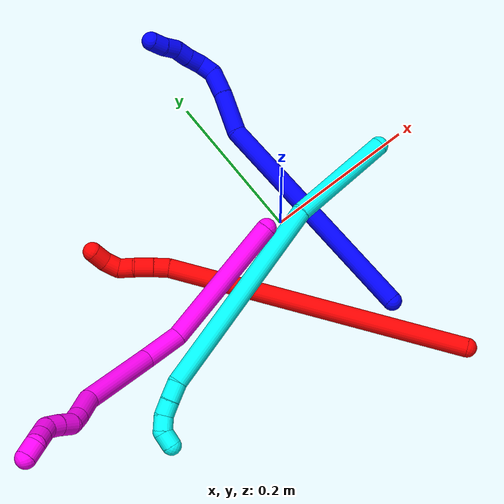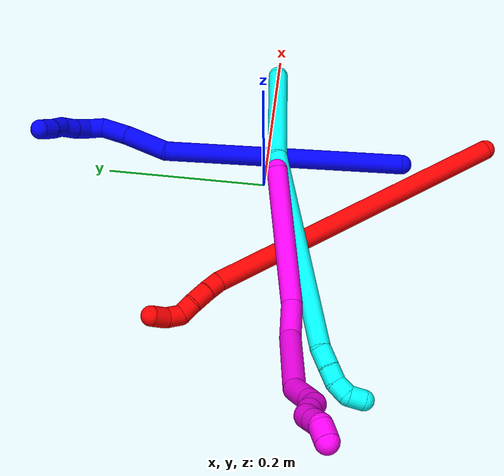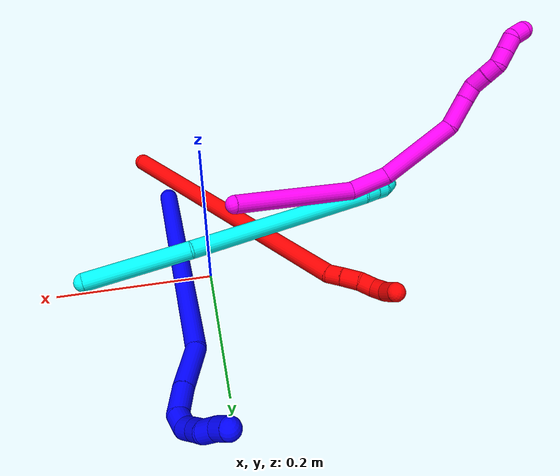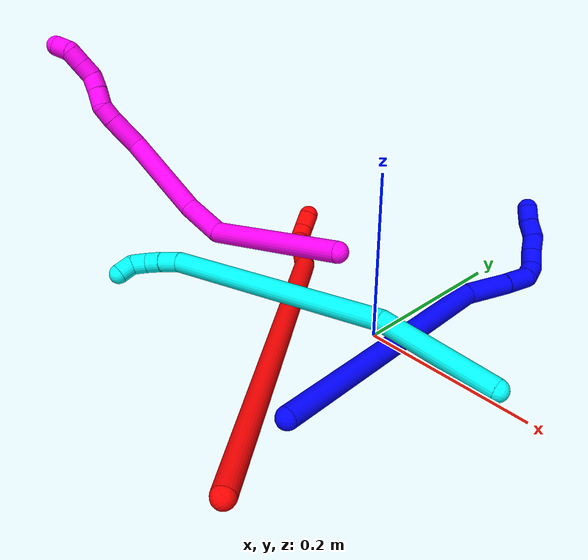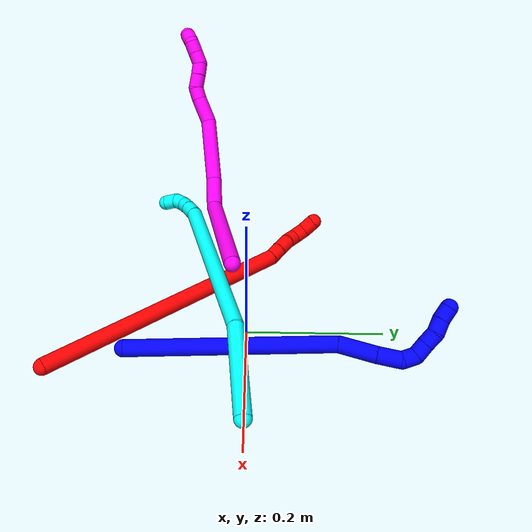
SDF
<sdf version="1.7">
 <world name="default">
  <model name="1">
   <static>0</static>
   <link name="1">
    <collision name="collision-cylinder-e_1_1_4">
     <pose>0.000756 0.152473 0.007462 -1.5219 0.004953 -0.004716</pose>
     <geometry><cylinder><radius>0.0125</radius><length>0.305315</length></cylinder></geometry>
     <surface>
      <friction><ode><mu>1.16</mu><mu2>1.16</mu2><slip1>0</slip1><slip2>0</slip2></ode></friction>
      <contact><ode><kp>1e+06</kp><kd>1</kd><max_vel>0</max_vel><min_depth>0.001</min_depth></ode></contact>
     </surface>
    </collision>
    <visual name="visual-cylinder-e_1_1_4">
     <pose>0.000756 0.152473 0.007462 -1.5219 0.004953 -0.004716</pose>
     <geometry><cylinder><radius>0.0125</radius><length>0.305315</length></cylinder></geometry>
     <material><ambient>0 0 1 1</ambient></material>
    </visual>
    <collision name="collision-cylinder-e_2_4_5">
     <pose>0.012253 0.331208 0.016992 -1.49217 0.387147 -0.358492</pose>
     <geometry><cylinder><radius>0.0125</radius><length>0.056898</length></cylinder></geometry>
     <surface>
      <friction><ode><mu>1.16</mu><mu2>1.16</mu2><slip1>0</slip1><slip2>0</slip2></ode></friction>
      <contact><ode><kp>1e+06</kp><kd>1</kd><max_vel>0</max_vel><min_depth>0.001</min_depth></ode></contact>
     </surface>
    </collision>
    <visual name="visual-cylinder-e_2_4_5">
     <pose>0.012253 0.331208 0.016992 -1.49217 0.387147 -0.358492</pose>
     <geometry><cylinder><radius>0.0125</radius><length>0.056898</length></cylinder></geometry>
     <material><ambient>0 0 1 1</ambient></material>
    </visual>
    <collision name="collision-cylinder-e_3_5_6">
     <pose>0.028045 0.373838 0.020113 -1.50663 0.298769 -0.280437</pose>
     <geometry><cylinder><radius>0.0125</radius><length>0.034323</length></cylinder></geometry>
     <surface>
      <friction><ode><mu>1.16</mu><mu2>1.16</mu2><slip1>0</slip1><slip2>0</slip2></ode></friction>
      <contact><ode><kp>1e+06</kp><kd>1</kd><max_vel>0</max_vel><min_depth>0.001</min_depth></ode></contact>
     </surface>
    </collision>
    <visual name="visual-cylinder-e_3_5_6">
     <pose>0.028045 0.373838 0.020113 -1.50663 0.298769 -0.280437</pose>
     <geometry><cylinder><radius>0.0125</radius><length>0.034323</length></cylinder></geometry>
     <material><ambient>0 0 1 1</ambient></material>
    </visual>
    <collision name="collision-cylinder-e_4_6_7">
     <pose>0.030387 0.400199 0.022974 -1.3917 -0.260783 0.218184</pose>
     <geometry><cylinder><radius>0.0125</radius><length>0.021022</length></cylinder></geometry>
     <surface>
      <friction><ode><mu>1.16</mu><mu2>1.16</mu2><slip1>0</slip1><slip2>0</slip2></ode></friction>
      <contact><ode><kp>1e+06</kp><kd>1</kd><max_vel>0</max_vel><min_depth>0.001</min_depth></ode></contact>
     </surface>
    </collision>
    <visual name="visual-cylinder-e_4_6_7">
     <pose>0.030387 0.400199 0.022974 -1.3917 -0.260783 0.218184</pose>
     <geometry><cylinder><radius>0.0125</radius><length>0.021022</length></cylinder></geometry>
     <material><ambient>0 0 1 1</ambient></material>
    </visual>
    <collision name="collision-cylinder-e_5_7_8">
     <pose>0.022226 0.416851 0.031117 -0.810451 -0.535341 0.234213</pose>
     <geometry><cylinder><radius>0.0125</radius><length>0.021369</length></cylinder></geometry>
     <surface>
      <friction><ode><mu>1.16</mu><mu2>1.16</mu2><slip1>0</slip1><slip2>0</slip2></ode></friction>
      <contact><ode><kp>1e+06</kp><kd>1</kd><max_vel>0</max_vel><min_depth>0.001</min_depth></ode></contact>
     </surface>
    </collision>
    <visual name="visual-cylinder-e_5_7_8">
     <pose>0.022226 0.416851 0.031117 -0.810451 -0.535341 0.234213</pose>
     <geometry><cylinder><radius>0.0125</radius><length>0.021369</length></cylinder></geometry>
     <material><ambient>0 0 1 1</ambient></material>
    </visual>
    <collision name="collision-cylinder-e_6_8_9">
     <pose>0.01266 0.429975 0.044131 -0.769032 -0.416754 0.170711</pose>
     <geometry><cylinder><radius>0.0125</radius><length>0.020335</length></cylinder></geometry>
     <surface>
      <friction><ode><mu>1.16</mu><mu2>1.16</mu2><slip1>0</slip1><slip2>0</slip2></ode></friction>
      <contact><ode><kp>1e+06</kp><kd>1</kd><max_vel>0</max_vel><min_depth>0.001</min_depth></ode></contact>
     </surface>
    </collision>
    <visual name="visual-cylinder-e_6_8_9">
     <pose>0.01266 0.429975 0.044131 -0.769032 -0.416754 0.170711</pose>
     <geometry><cylinder><radius>0.0125</radius><length>0.020335</length></cylinder></geometry>
     <material><ambient>0 0 1 1</ambient></material>
    </visual>
    <collision name="collision-cylinder-e_7_9_10">
     <pose>0.001447 0.440461 0.057068 -0.571053 -0.762047 0.234115</pose>
     <geometry><cylinder><radius>0.0125</radius><length>0.020558</length></cylinder></geometry>
     <surface>
      <friction><ode><mu>1.16</mu><mu2>1.16</mu2><slip1>0</slip1><slip2>0</slip2></ode></friction>
      <contact><ode><kp>1e+06</kp><kd>1</kd><max_vel>0</max_vel><min_depth>0.001</min_depth></ode></contact>
     </surface>
    </collision>
    <visual name="visual-cylinder-e_7_9_10">
     <pose>0.001447 0.440461 0.057068 -0.571053 -0.762047 0.234115</pose>
     <geometry><cylinder><radius>0.0125</radius><length>0.020558</length></cylinder></geometry>
     <material><ambient>0 0 1 1</ambient></material>
    </visual>
    <collision name="collision-cylinder-e_8_10_2">
     <pose>-0.011336 0.450059 0.069516 -0.733362 -0.598726 0.235964</pose>
     <geometry><cylinder><radius>0.0125</radius><length>0.020179</length></cylinder></geometry>
     <surface>
      <friction><ode><mu>1.16</mu><mu2>1.16</mu2><slip1>0</slip1><slip2>0</slip2></ode></friction>
      <contact><ode><kp>1e+06</kp><kd>1</kd><max_vel>0</max_vel><min_depth>0.001</min_depth></ode></contact>
     </surface>
    </collision>
    <visual name="visual-cylinder-e_8_10_2">
     <pose>-0.011336 0.450059 0.069516 -0.733362 -0.598726 0.235964</pose>
     <geometry><cylinder><radius>0.0125</radius><length>0.020179</length></cylinder></geometry>
     <material><ambient>0 0 1 1</ambient></material>
    </visual>
    <collision name="collision-sphere-2">
     <pose>-0.017022 0.455638 0.075708 0 -0 0</pose>
     <geometry><sphere><radius>0.0125</radius></sphere></geometry>
     <surface>
      <friction><ode><mu>1.16</mu><mu2>1.16</mu2><slip1>0</slip1><slip2>0</slip2></ode></friction>
      <contact><ode><kp>1e+06</kp><kd>1</kd><max_vel>0</max_vel><min_depth>0.001</min_depth></ode></contact>
     </surface>
    </collision>
    <visual name="visual-sphere-2">
     <pose>-0.017022 0.455638 0.075708 0 -0 0</pose>
     <geometry><sphere><radius>0.0125</radius></sphere></geometry>
     <material><ambient>0 0 1 1</ambient></material>
    </visual>
    <collision name="collision-sphere-10">
     <pose>-0.005649 0.44448 0.063324 0 -0 0</pose>
     <geometry><sphere><radius>0.0125</radius></sphere></geometry>
     <surface>
      <friction><ode><mu>1.16</mu><mu2>1.16</mu2><slip1>0</slip1><slip2>0</slip2></ode></friction>
      <contact><ode><kp>1e+06</kp><kd>1</kd><max_vel>0</max_vel><min_depth>0.001</min_depth></ode></contact>
     </surface>
    </collision>
    <visual name="visual-sphere-10">
     <pose>-0.005649 0.44448 0.063324 0 -0 0</pose>
     <geometry><sphere><radius>0.0125</radius></sphere></geometry>
     <material><ambient>0 0 1 1</ambient></material>
    </visual>
    <collision name="collision-sphere-9">
     <pose>0.008544 0.436441 0.050812 0 -0 0</pose>
     <geometry><sphere><radius>0.0125</radius></sphere></geometry>
     <surface>
      <friction><ode><mu>1.16</mu><mu2>1.16</mu2><slip1>0</slip1><slip2>0</slip2></ode></friction>
      <contact><ode><kp>1e+06</kp><kd>1</kd><max_vel>0</max_vel><min_depth>0.001</min_depth></ode></contact>
     </surface>
    </collision>
    <visual name="visual-sphere-9">
     <pose>0.008544 0.436441 0.050812 0 -0 0</pose>
     <geometry><sphere><radius>0.0125</radius></sphere></geometry>
     <material><ambient>0 0 1 1</ambient></material>
    </visual>
    <collision name="collision-sphere-4">
     <pose>0.001512 0.304946 0.014923 0 -0 0</pose>
     <geometry><sphere><radius>0.0125</radius></sphere></geometry>
     <surface>
      <friction><ode><mu>1.16</mu><mu2>1.16</mu2><slip1>0</slip1><slip2>0</slip2></ode></friction>
      <contact><ode><kp>1e+06</kp><kd>1</kd><max_vel>0</max_vel><min_depth>0.001</min_depth></ode></contact>
     </surface>
    </collision>
    <visual name="visual-sphere-4">
     <pose>0.001512 0.304946 0.014923 0 -0 0</pose>
     <geometry><sphere><radius>0.0125</radius></sphere></geometry>
     <material><ambient>0 0 1 1</ambient></material>
    </visual>
    <collision name="collision-sphere-1">
     <geometry><sphere><radius>0.0125</radius></sphere></geometry>
     <surface>
      <friction><ode><mu>1.16</mu><mu2>1.16</mu2><slip1>0</slip1><slip2>0</slip2></ode></friction>
      <contact><ode><kp>1e+06</kp><kd>1</kd><max_vel>0</max_vel><min_depth>0.001</min_depth></ode></contact>
     </surface>
    </collision>
    <visual name="visual-sphere-1">
     <geometry><sphere><radius>0.0125</radius></sphere></geometry>
     <material><ambient>0 0 1 1</ambient></material>
    </visual>
    <collision name="collision-sphere-8">
     <pose>0.016776 0.42351 0.03745 0 -0 0</pose>
     <geometry><sphere><radius>0.0125</radius></sphere></geometry>
     <surface>
      <friction><ode><mu>1.16</mu><mu2>1.16</mu2><slip1>0</slip1><slip2>0</slip2></ode></friction>
      <contact><ode><kp>1e+06</kp><kd>1</kd><max_vel>0</max_vel><min_depth>0.001</min_depth></ode></contact>
     </surface>
    </collision>
    <visual name="visual-sphere-8">
     <pose>0.016776 0.42351 0.03745 0 -0 0</pose>
     <geometry><sphere><radius>0.0125</radius></sphere></geometry>
     <material><ambient>0 0 1 1</ambient></material>
    </visual>
    <collision name="collision-sphere-5">
     <pose>0.022994 0.35747 0.019062 0 -0 0</pose>
     <geometry><sphere><radius>0.0125</radius></sphere></geometry>
     <surface>
      <friction><ode><mu>1.16</mu><mu2>1.16</mu2><slip1>0</slip1><slip2>0</slip2></ode></friction>
      <contact><ode><kp>1e+06</kp><kd>1</kd><max_vel>0</max_vel><min_depth>0.001</min_depth></ode></contact>
     </surface>
    </collision>
    <visual name="visual-sphere-5">
     <pose>0.022994 0.35747 0.019062 0 -0 0</pose>
     <geometry><sphere><radius>0.0125</radius></sphere></geometry>
     <material><ambient>0 0 1 1</ambient></material>
    </visual>
    <collision name="collision-sphere-6">
     <pose>0.033097 0.390206 0.021165 0 -0 0</pose>
     <geometry><sphere><radius>0.0125</radius></sphere></geometry>
     <surface>
      <friction><ode><mu>1.16</mu><mu2>1.16</mu2><slip1>0</slip1><slip2>0</slip2></ode></friction>
      <contact><ode><kp>1e+06</kp><kd>1</kd><max_vel>0</max_vel><min_depth>0.001</min_depth></ode></contact>
     </surface>
    </collision>
    <visual name="visual-sphere-6">
     <pose>0.033097 0.390206 0.021165 0 -0 0</pose>
     <geometry><sphere><radius>0.0125</radius></sphere></geometry>
     <material><ambient>0 0 1 1</ambient></material>
    </visual>
    <collision name="collision-sphere-7">
     <pose>0.027676 0.410192 0.024783 0 -0 0</pose>
     <geometry><sphere><radius>0.0125</radius></sphere></geometry>
     <surface>
      <friction><ode><mu>1.16</mu><mu2>1.16</mu2><slip1>0</slip1><slip2>0</slip2></ode></friction>
      <contact><ode><kp>1e+06</kp><kd>1</kd><max_vel>0</max_vel><min_depth>0.001</min_depth></ode></contact>
     </surface>
    </collision>
    <visual name="visual-sphere-7">
     <pose>0.027676 0.410192 0.024783 0 -0 0</pose>
     <geometry><sphere><radius>0.0125</radius></sphere></geometry>
     <material><ambient>0 0 1 1</ambient></material>
    </visual>
    <inertial>
     <pose>0.006126 0.24486 0.017113 0 -0 0</pose>
     <mass>0.5</mass>
     <inertia>
      <ixx>0.002392</ixx>
      <ixy>0</ixy>
      <ixz>0</ixz>
      <iyy>0.000145</iyy>
      <iyz>0</iyz>
      <izz>-0.002417</izz>
     </inertia>
    </inertial>
   </link>
   <pose>0.044102 -0.173826 0.011499 -0.047755 0.075582 0.04905</pose>
  </model>
  <model name="2">
   <static>0</static>
   <link name="2">
    <collision name="collision-cylinder-e_1_1_4">
     <pose>-0.114793 0.151228 -0.051001 -1.89606 -0.623542 0.843717</pose>
     <geometry><cylinder><radius>0.0125</radius><length>0.393184</length></cylinder></geometry>
     <surface>
      <friction><ode><mu>1.16</mu><mu2>1.16</mu2><slip1>0</slip1><slip2>0</slip2></ode></friction>
      <contact><ode><kp>1e+06</kp><kd>1</kd><max_vel>0</max_vel><min_depth>0.001</min_depth></ode></contact>
     </surface>
    </collision>
    <visual name="visual-cylinder-e_1_1_4">
     <pose>-0.114793 0.151228 -0.051001 -1.89606 -0.623542 0.843717</pose>
     <geometry><cylinder><radius>0.0125</radius><length>0.393184</length></cylinder></geometry>
     <material><ambient>1 0 0 1</ambient></material>
    </visual>
    <collision name="collision-cylinder-e_2_4_5">
     <pose>-0.237313 0.307981 -0.105901 -2.18526 -0.851849 1.43809</pose>
     <geometry><cylinder><radius>0.0125</radius><length>0.020537</length></cylinder></geometry>
     <surface>
      <friction><ode><mu>1.16</mu><mu2>1.16</mu2><slip1>0</slip1><slip2>0</slip2></ode></friction>
      <contact><ode><kp>1e+06</kp><kd>1</kd><max_vel>0</max_vel><min_depth>0.001</min_depth></ode></contact>
     </surface>
    </collision>
    <visual name="visual-cylinder-e_2_4_5">
     <pose>-0.237313 0.307981 -0.105901 -2.18526 -0.851849 1.43809</pose>
     <geometry><cylinder><radius>0.0125</radius><length>0.020537</length></cylinder></geometry>
     <material><ambient>1 0 0 1</ambient></material>
    </visual>
    <collision name="collision-cylinder-e_3_5_6">
     <pose>-0.253519 0.320119 -0.115137 -2.24992 -0.784323 1.4267</pose>
     <geometry><cylinder><radius>0.0125</radius><length>0.024009</length></cylinder></geometry>
     <surface>
      <friction><ode><mu>1.16</mu><mu2>1.16</mu2><slip1>0</slip1><slip2>0</slip2></ode></friction>
      <contact><ode><kp>1e+06</kp><kd>1</kd><max_vel>0</max_vel><min_depth>0.001</min_depth></ode></contact>
     </surface>
    </collision>
    <visual name="visual-cylinder-e_3_5_6">
     <pose>-0.253519 0.320119 -0.115137 -2.24992 -0.784323 1.4267</pose>
     <geometry><cylinder><radius>0.0125</radius><length>0.024009</length></cylinder></geometry>
     <material><ambient>1 0 0 1</ambient></material>
    </visual>
    <collision name="collision-cylinder-e_4_6_7">
     <pose>-0.267342 0.333269 -0.125981 -2.2708 -0.558699 1.10515</pose>
     <geometry><cylinder><radius>0.0125</radius><length>0.020163</length></cylinder></geometry>
     <surface>
      <friction><ode><mu>1.16</mu><mu2>1.16</mu2><slip1>0</slip1><slip2>0</slip2></ode></friction>
      <contact><ode><kp>1e+06</kp><kd>1</kd><max_vel>0</max_vel><min_depth>0.001</min_depth></ode></contact>
     </surface>
    </collision>
    <visual name="visual-cylinder-e_4_6_7">
     <pose>-0.267342 0.333269 -0.125981 -2.2708 -0.558699 1.10515</pose>
     <geometry><cylinder><radius>0.0125</radius><length>0.020163</length></cylinder></geometry>
     <material><ambient>1 0 0 1</ambient></material>
    </visual>
    <collision name="collision-cylinder-e_5_7_8">
     <pose>-0.280525 0.346243 -0.131106 -1.51145 -0.882552 0.837561</pose>
     <geometry><cylinder><radius>0.0125</radius><length>0.020298</length></cylinder></geometry>
     <surface>
      <friction><ode><mu>1.16</mu><mu2>1.16</mu2><slip1>0</slip1><slip2>0</slip2></ode></friction>
      <contact><ode><kp>1e+06</kp><kd>1</kd><max_vel>0</max_vel><min_depth>0.001</min_depth></ode></contact>
     </surface>
    </collision>
    <visual name="visual-cylinder-e_5_7_8">
     <pose>-0.280525 0.346243 -0.131106 -1.51145 -0.882552 0.837561</pose>
     <geometry><cylinder><radius>0.0125</radius><length>0.020298</length></cylinder></geometry>
     <material><ambient>1 0 0 1</ambient></material>
    </visual>
    <collision name="collision-cylinder-e_6_8_2">
     <pose>-0.297496 0.357629 -0.127406 -0.980392 -0.992638 0.562639</pose>
     <geometry><cylinder><radius>0.0125</radius><length>0.02181</length></cylinder></geometry>
     <surface>
      <friction><ode><mu>1.16</mu><mu2>1.16</mu2><slip1>0</slip1><slip2>0</slip2></ode></friction>
      <contact><ode><kp>1e+06</kp><kd>1</kd><max_vel>0</max_vel><min_depth>0.001</min_depth></ode></contact>
     </surface>
    </collision>
    <visual name="visual-cylinder-e_6_8_2">
     <pose>-0.297496 0.357629 -0.127406 -0.980392 -0.992638 0.562639</pose>
     <geometry><cylinder><radius>0.0125</radius><length>0.02181</length></cylinder></geometry>
     <material><ambient>1 0 0 1</ambient></material>
    </visual>
    <collision name="collision-sphere-2">
     <pose>-0.306629 0.362579 -0.124088 0 -0 0</pose>
     <geometry><sphere><radius>0.0125</radius></sphere></geometry>
     <surface>
      <friction><ode><mu>1.16</mu><mu2>1.16</mu2><slip1>0</slip1><slip2>0</slip2></ode></friction>
      <contact><ode><kp>1e+06</kp><kd>1</kd><max_vel>0</max_vel><min_depth>0.001</min_depth></ode></contact>
     </surface>
    </collision>
    <visual name="visual-sphere-2">
     <pose>-0.306629 0.362579 -0.124088 0 -0 0</pose>
     <geometry><sphere><radius>0.0125</radius></sphere></geometry>
     <material><ambient>1 0 0 1</ambient></material>
    </visual>
    <collision name="collision-sphere-4">
     <pose>-0.229586 0.302456 -0.102002 0 -0 0</pose>
     <geometry><sphere><radius>0.0125</radius></sphere></geometry>
     <surface>
      <friction><ode><mu>1.16</mu><mu2>1.16</mu2><slip1>0</slip1><slip2>0</slip2></ode></friction>
      <contact><ode><kp>1e+06</kp><kd>1</kd><max_vel>0</max_vel><min_depth>0.001</min_depth></ode></contact>
     </surface>
    </collision>
    <visual name="visual-sphere-4">
     <pose>-0.229586 0.302456 -0.102002 0 -0 0</pose>
     <geometry><sphere><radius>0.0125</radius></sphere></geometry>
     <material><ambient>1 0 0 1</ambient></material>
    </visual>
    <collision name="collision-sphere-1">
     <geometry><sphere><radius>0.0125</radius></sphere></geometry>
     <surface>
      <friction><ode><mu>1.16</mu><mu2>1.16</mu2><slip1>0</slip1><slip2>0</slip2></ode></friction>
      <contact><ode><kp>1e+06</kp><kd>1</kd><max_vel>0</max_vel><min_depth>0.001</min_depth></ode></contact>
     </surface>
    </collision>
    <visual name="visual-sphere-1">
     <geometry><sphere><radius>0.0125</radius></sphere></geometry>
     <material><ambient>1 0 0 1</ambient></material>
    </visual>
    <collision name="collision-sphere-8">
     <pose>-0.288363 0.352678 -0.130724 0 -0 0</pose>
     <geometry><sphere><radius>0.0125</radius></sphere></geometry>
     <surface>
      <friction><ode><mu>1.16</mu><mu2>1.16</mu2><slip1>0</slip1><slip2>0</slip2></ode></friction>
      <contact><ode><kp>1e+06</kp><kd>1</kd><max_vel>0</max_vel><min_depth>0.001</min_depth></ode></contact>
     </surface>
    </collision>
    <visual name="visual-sphere-8">
     <pose>-0.288363 0.352678 -0.130724 0 -0 0</pose>
     <geometry><sphere><radius>0.0125</radius></sphere></geometry>
     <material><ambient>1 0 0 1</ambient></material>
    </visual>
    <collision name="collision-sphere-5">
     <pose>-0.24504 0.313507 -0.109799 0 -0 0</pose>
     <geometry><sphere><radius>0.0125</radius></sphere></geometry>
     <surface>
      <friction><ode><mu>1.16</mu><mu2>1.16</mu2><slip1>0</slip1><slip2>0</slip2></ode></friction>
      <contact><ode><kp>1e+06</kp><kd>1</kd><max_vel>0</max_vel><min_depth>0.001</min_depth></ode></contact>
     </surface>
    </collision>
    <visual name="visual-sphere-5">
     <pose>-0.24504 0.313507 -0.109799 0 -0 0</pose>
     <geometry><sphere><radius>0.0125</radius></sphere></geometry>
     <material><ambient>1 0 0 1</ambient></material>
    </visual>
    <collision name="collision-sphere-6">
     <pose>-0.261998 0.326731 -0.120474 0 -0 0</pose>
     <geometry><sphere><radius>0.0125</radius></sphere></geometry>
     <surface>
      <friction><ode><mu>1.16</mu><mu2>1.16</mu2><slip1>0</slip1><slip2>0</slip2></ode></friction>
      <contact><ode><kp>1e+06</kp><kd>1</kd><max_vel>0</max_vel><min_depth>0.001</min_depth></ode></contact>
     </surface>
    </collision>
    <visual name="visual-sphere-6">
     <pose>-0.261998 0.326731 -0.120474 0 -0 0</pose>
     <geometry><sphere><radius>0.0125</radius></sphere></geometry>
     <material><ambient>1 0 0 1</ambient></material>
    </visual>
    <collision name="collision-sphere-7">
     <pose>-0.272686 0.339808 -0.131488 0 -0 0</pose>
     <geometry><sphere><radius>0.0125</radius></sphere></geometry>
     <surface>
      <friction><ode><mu>1.16</mu><mu2>1.16</mu2><slip1>0</slip1><slip2>0</slip2></ode></friction>
      <contact><ode><kp>1e+06</kp><kd>1</kd><max_vel>0</max_vel><min_depth>0.001</min_depth></ode></contact>
     </surface>
    </collision>
    <visual name="visual-sphere-7">
     <pose>-0.272686 0.339808 -0.131488 0 -0 0</pose>
     <geometry><sphere><radius>0.0125</radius></sphere></geometry>
     <material><ambient>1 0 0 1</ambient></material>
    </visual>
    <inertial>
     <pose>-0.147336 0.190037 -0.065944 0 -0 0</pose>
     <mass>0.5</mass>
     <inertia>
      <ixx>0.005806</ixx>
      <ixy>0</ixy>
      <ixz>0</ixz>
      <iyy>0.00414</iyy>
      <iyz>0</iyz>
      <izz>-0.00095</izz>
     </inertia>
    </inertial>
   </link>
   <pose>0.079198 -0.279915 0.011496 -0.588276 0.833262 -0.420484</pose>
  </model>
  <model name="3">
   <static>0</static>
   <link name="3">
    <collision name="collision-cylinder-e_1_1_4">
     <pose>-0.060567 -0.016771 0.034482 0.452682 -1.0064 -0.252184</pose>
     <geometry><cylinder><radius>0.0125</radius><length>0.14337</length></cylinder></geometry>
     <surface>
      <friction><ode><mu>1.16</mu><mu2>1.16</mu2><slip1>0</slip1><slip2>0</slip2></ode></friction>
      <contact><ode><kp>1e+06</kp><kd>1</kd><max_vel>0</max_vel><min_depth>0.001</min_depth></ode></contact>
     </surface>
    </collision>
    <visual name="visual-cylinder-e_1_1_4">
     <pose>-0.060567 -0.016771 0.034482 0.452682 -1.0064 -0.252184</pose>
     <geometry><cylinder><radius>0.0125</radius><length>0.14337</length></cylinder></geometry>
     <material><ambient>0.003922 1 0.996078 1</ambient></material>
    </visual>
    <collision name="collision-cylinder-e_2_4_5">
     <pose>-0.249768 -0.059769 0.104105 0.641159 -1.24227 -0.466571</pose>
     <geometry><cylinder><radius>0.0125</radius><length>0.271803</length></cylinder></geometry>
     <surface>
      <friction><ode><mu>1.16</mu><mu2>1.16</mu2><slip1>0</slip1><slip2>0</slip2></ode></friction>
      <contact><ode><kp>1e+06</kp><kd>1</kd><max_vel>0</max_vel><min_depth>0.001</min_depth></ode></contact>
     </surface>
    </collision>
    <visual name="visual-cylinder-e_2_4_5">
     <pose>-0.249768 -0.059769 0.104105 0.641159 -1.24227 -0.466571</pose>
     <geometry><cylinder><radius>0.0125</radius><length>0.271803</length></cylinder></geometry>
     <material><ambient>0.003922 1 0.996078 1</ambient></material>
    </visual>
    <collision name="collision-cylinder-e_3_5_6">
     <pose>-0.39043 -0.087977 0.139385 1.50026 -1.40711 -1.33791</pose>
     <geometry><cylinder><radius>0.0125</radius><length>0.024383</length></cylinder></geometry>
     <surface>
      <friction><ode><mu>1.16</mu><mu2>1.16</mu2><slip1>0</slip1><slip2>0</slip2></ode></friction>
      <contact><ode><kp>1e+06</kp><kd>1</kd><max_vel>0</max_vel><min_depth>0.001</min_depth></ode></contact>
     </surface>
    </collision>
    <visual name="visual-cylinder-e_3_5_6">
     <pose>-0.39043 -0.087977 0.139385 1.50026 -1.40711 -1.33791</pose>
     <geometry><cylinder><radius>0.0125</radius><length>0.024383</length></cylinder></geometry>
     <material><ambient>0.003922 1 0.996078 1</ambient></material>
    </visual>
    <collision name="collision-cylinder-e_4_6_7">
     <pose>-0.412574 -0.091015 0.139197 1.87142 -1.46193 -1.76573</pose>
     <geometry><cylinder><radius>0.0125</radius><length>0.020351</length></cylinder></geometry>
     <surface>
      <friction><ode><mu>1.16</mu><mu2>1.16</mu2><slip1>0</slip1><slip2>0</slip2></ode></friction>
      <contact><ode><kp>1e+06</kp><kd>1</kd><max_vel>0</max_vel><min_depth>0.001</min_depth></ode></contact>
     </surface>
    </collision>
    <visual name="visual-cylinder-e_4_6_7">
     <pose>-0.412574 -0.091015 0.139197 1.87142 -1.46193 -1.76573</pose>
     <geometry><cylinder><radius>0.0125</radius><length>0.020351</length></cylinder></geometry>
     <material><ambient>0.003922 1 0.996078 1</ambient></material>
    </visual>
    <collision name="collision-cylinder-e_5_7_8">
     <pose>-0.431765 -0.095316 0.13608 2.28088 -1.13019 -1.88832</pose>
     <geometry><cylinder><radius>0.0125</radius><length>0.020068</length></cylinder></geometry>
     <surface>
      <friction><ode><mu>1.16</mu><mu2>1.16</mu2><slip1>0</slip1><slip2>0</slip2></ode></friction>
      <contact><ode><kp>1e+06</kp><kd>1</kd><max_vel>0</max_vel><min_depth>0.001</min_depth></ode></contact>
     </surface>
    </collision>
    <visual name="visual-cylinder-e_5_7_8">
     <pose>-0.431765 -0.095316 0.13608 2.28088 -1.13019 -1.88832</pose>
     <geometry><cylinder><radius>0.0125</radius><length>0.020068</length></cylinder></geometry>
     <material><ambient>0.003922 1 0.996078 1</ambient></material>
    </visual>
    <collision name="collision-cylinder-e_6_8_2">
     <pose>-0.446183 -0.100691 0.125094 2.88731 -0.562835 -2.30892</pose>
     <geometry><cylinder><radius>0.0125</radius><length>0.020026</length></cylinder></geometry>
     <surface>
      <friction><ode><mu>1.16</mu><mu2>1.16</mu2><slip1>0</slip1><slip2>0</slip2></ode></friction>
      <contact><ode><kp>1e+06</kp><kd>1</kd><max_vel>0</max_vel><min_depth>0.001</min_depth></ode></contact>
     </surface>
    </collision>
    <visual name="visual-cylinder-e_6_8_2">
     <pose>-0.446183 -0.100691 0.125094 2.88731 -0.562835 -2.30892</pose>
     <geometry><cylinder><radius>0.0125</radius><length>0.020026</length></cylinder></geometry>
     <material><ambient>0.003922 1 0.996078 1</ambient></material>
    </visual>
    <collision name="collision-sphere-2">
     <pose>-0.451526 -0.102821 0.116898 0 -0 0</pose>
     <geometry><sphere><radius>0.0125</radius></sphere></geometry>
     <surface>
      <friction><ode><mu>1.16</mu><mu2>1.16</mu2><slip1>0</slip1><slip2>0</slip2></ode></friction>
      <contact><ode><kp>1e+06</kp><kd>1</kd><max_vel>0</max_vel><min_depth>0.001</min_depth></ode></contact>
     </surface>
    </collision>
    <visual name="visual-sphere-2">
     <pose>-0.451526 -0.102821 0.116898 0 -0 0</pose>
     <geometry><sphere><radius>0.0125</radius></sphere></geometry>
     <material><ambient>0.003922 1 0.996078 1</ambient></material>
    </visual>
    <collision name="collision-sphere-4">
     <pose>-0.121135 -0.033542 0.068965 0 -0 0</pose>
     <geometry><sphere><radius>0.0125</radius></sphere></geometry>
     <surface>
      <friction><ode><mu>1.16</mu><mu2>1.16</mu2><slip1>0</slip1><slip2>0</slip2></ode></friction>
      <contact><ode><kp>1e+06</kp><kd>1</kd><max_vel>0</max_vel><min_depth>0.001</min_depth></ode></contact>
     </surface>
    </collision>
    <visual name="visual-sphere-4">
     <pose>-0.121135 -0.033542 0.068965 0 -0 0</pose>
     <geometry><sphere><radius>0.0125</radius></sphere></geometry>
     <material><ambient>0.003922 1 0.996078 1</ambient></material>
    </visual>
    <collision name="collision-sphere-1">
     <geometry><sphere><radius>0.0125</radius></sphere></geometry>
     <surface>
      <friction><ode><mu>1.16</mu><mu2>1.16</mu2><slip1>0</slip1><slip2>0</slip2></ode></friction>
      <contact><ode><kp>1e+06</kp><kd>1</kd><max_vel>0</max_vel><min_depth>0.001</min_depth></ode></contact>
     </surface>
    </collision>
    <visual name="visual-sphere-1">
     <geometry><sphere><radius>0.0125</radius></sphere></geometry>
     <material><ambient>0.003922 1 0.996078 1</ambient></material>
    </visual>
    <collision name="collision-sphere-8">
     <pose>-0.44084 -0.098561 0.13329 0 -0 0</pose>
     <geometry><sphere><radius>0.0125</radius></sphere></geometry>
     <surface>
      <friction><ode><mu>1.16</mu><mu2>1.16</mu2><slip1>0</slip1><slip2>0</slip2></ode></friction>
      <contact><ode><kp>1e+06</kp><kd>1</kd><max_vel>0</max_vel><min_depth>0.001</min_depth></ode></contact>
     </surface>
    </collision>
    <visual name="visual-sphere-8">
     <pose>-0.44084 -0.098561 0.13329 0 -0 0</pose>
     <geometry><sphere><radius>0.0125</radius></sphere></geometry>
     <material><ambient>0.003922 1 0.996078 1</ambient></material>
    </visual>
    <collision name="collision-sphere-5">
     <pose>-0.378402 -0.085995 0.139245 0 -0 0</pose>
     <geometry><sphere><radius>0.0125</radius></sphere></geometry>
     <surface>
      <friction><ode><mu>1.16</mu><mu2>1.16</mu2><slip1>0</slip1><slip2>0</slip2></ode></friction>
      <contact><ode><kp>1e+06</kp><kd>1</kd><max_vel>0</max_vel><min_depth>0.001</min_depth></ode></contact>
     </surface>
    </collision>
    <visual name="visual-sphere-5">
     <pose>-0.378402 -0.085995 0.139245 0 -0 0</pose>
     <geometry><sphere><radius>0.0125</radius></sphere></geometry>
     <material><ambient>0.003922 1 0.996078 1</ambient></material>
    </visual>
    <collision name="collision-sphere-6">
     <pose>-0.402459 -0.089959 0.139525 0 -0 0</pose>
     <geometry><sphere><radius>0.0125</radius></sphere></geometry>
     <surface>
      <friction><ode><mu>1.16</mu><mu2>1.16</mu2><slip1>0</slip1><slip2>0</slip2></ode></friction>
      <contact><ode><kp>1e+06</kp><kd>1</kd><max_vel>0</max_vel><min_depth>0.001</min_depth></ode></contact>
     </surface>
    </collision>
    <visual name="visual-sphere-6">
     <pose>-0.402459 -0.089959 0.139525 0 -0 0</pose>
     <geometry><sphere><radius>0.0125</radius></sphere></geometry>
     <material><ambient>0.003922 1 0.996078 1</ambient></material>
    </visual>
    <collision name="collision-sphere-7">
     <pose>-0.422689 -0.092071 0.13887 0 -0 0</pose>
     <geometry><sphere><radius>0.0125</radius></sphere></geometry>
     <surface>
      <friction><ode><mu>1.16</mu><mu2>1.16</mu2><slip1>0</slip1><slip2>0</slip2></ode></friction>
      <contact><ode><kp>1e+06</kp><kd>1</kd><max_vel>0</max_vel><min_depth>0.001</min_depth></ode></contact>
     </surface>
    </collision>
    <visual name="visual-sphere-7">
     <pose>-0.422689 -0.092071 0.13887 0 -0 0</pose>
     <geometry><sphere><radius>0.0125</radius></sphere></geometry>
     <material><ambient>0.003922 1 0.996078 1</ambient></material>
    </visual>
    <inertial>
     <pose>-0.224174 -0.053153 0.089414 0 -0 0</pose>
     <mass>0.5</mass>
     <inertia>
      <ixx>0.000299</ixx>
      <ixy>0</ixy>
      <ixz>0</ixz>
      <iyy>0.001594</iyy>
      <iyz>0</iyz>
      <izz>0.002206</izz>
     </inertia>
    </inertial>
   </link>
   <pose>0.163114 -0.000919 0.018719 -1.13997 -0.31226 0.449135</pose>
  </model>
  <model name="10">
   <static>0</static>
   <link name="10">
    <collision name="collision-cylinder-e_1_1_4">
     <pose>-0.040596 0.026408 0.071594 -0.353376 -0.488911 0.089018</pose>
     <geometry><cylinder><radius>0.0125</radius><length>0.172872</length></cylinder></geometry>
     <surface>
      <friction><ode><mu>1.16</mu><mu2>1.16</mu2><slip1>0</slip1><slip2>0</slip2></ode></friction>
      <contact><ode><kp>1e+06</kp><kd>1</kd><max_vel>0</max_vel><min_depth>0.001</min_depth></ode></contact>
     </surface>
    </collision>
    <visual name="visual-cylinder-e_1_1_4">
     <pose>-0.040596 0.026408 0.071594 -0.353376 -0.488911 0.089018</pose>
     <geometry><cylinder><radius>0.0125</radius><length>0.172872</length></cylinder></geometry>
     <material><ambient>1 0 0.964706 1</ambient></material>
    </visual>
    <collision name="collision-cylinder-e_2_4_5">
     <pose>-0.085392 0.051799 0.169595 0.038523 -0.157628 -0.003043</pose>
     <geometry><cylinder><radius>0.0125</radius><length>0.053515</length></cylinder></geometry>
     <surface>
      <friction><ode><mu>1.16</mu><mu2>1.16</mu2><slip1>0</slip1><slip2>0</slip2></ode></friction>
      <contact><ode><kp>1e+06</kp><kd>1</kd><max_vel>0</max_vel><min_depth>0.001</min_depth></ode></contact>
     </surface>
    </collision>
    <visual name="visual-cylinder-e_2_4_5">
     <pose>-0.085392 0.051799 0.169595 0.038523 -0.157628 -0.003043</pose>
     <geometry><cylinder><radius>0.0125</radius><length>0.053515</length></cylinder></geometry>
     <material><ambient>1 0 0.964706 1</ambient></material>
    </visual>
    <collision name="collision-cylinder-e_3_5_6">
     <pose>-0.093959 0.033752 0.247338 0.320281 -0.080559 -0.013019</pose>
     <geometry><cylinder><radius>0.0125</radius><length>0.108527</length></cylinder></geometry>
     <surface>
      <friction><ode><mu>1.16</mu><mu2>1.16</mu2><slip1>0</slip1><slip2>0</slip2></ode></friction>
      <contact><ode><kp>1e+06</kp><kd>1</kd><max_vel>0</max_vel><min_depth>0.001</min_depth></ode></contact>
     </surface>
    </collision>
    <visual name="visual-cylinder-e_3_5_6">
     <pose>-0.093959 0.033752 0.247338 0.320281 -0.080559 -0.013019</pose>
     <geometry><cylinder><radius>0.0125</radius><length>0.108527</length></cylinder></geometry>
     <material><ambient>1 0 0.964706 1</ambient></material>
    </visual>
    <collision name="collision-cylinder-e_4_6_7">
     <pose>-0.102638 0.003085 0.314366 0.715575 -0.204539 -0.076703</pose>
     <geometry><cylinder><radius>0.0125</radius><length>0.042465</length></cylinder></geometry>
     <surface>
      <friction><ode><mu>1.16</mu><mu2>1.16</mu2><slip1>0</slip1><slip2>0</slip2></ode></friction>
      <contact><ode><kp>1e+06</kp><kd>1</kd><max_vel>0</max_vel><min_depth>0.001</min_depth></ode></contact>
     </surface>
    </collision>
    <visual name="visual-cylinder-e_4_6_7">
     <pose>-0.102638 0.003085 0.314366 0.715575 -0.204539 -0.076703</pose>
     <geometry><cylinder><radius>0.0125</radius><length>0.042465</length></cylinder></geometry>
     <material><ambient>1 0 0.964706 1</ambient></material>
    </visual>
    <collision name="collision-cylinder-e_5_7_8">
     <pose>-0.108004 -0.017088 0.337616 0.712689 -0.105019 -0.039123</pose>
     <geometry><cylinder><radius>0.0125</radius><length>0.020095</length></cylinder></geometry>
     <surface>
      <friction><ode><mu>1.16</mu><mu2>1.16</mu2><slip1>0</slip1><slip2>0</slip2></ode></friction>
      <contact><ode><kp>1e+06</kp><kd>1</kd><max_vel>0</max_vel><min_depth>0.001</min_depth></ode></contact>
     </surface>
    </collision>
    <visual name="visual-cylinder-e_5_7_8">
     <pose>-0.108004 -0.017088 0.337616 0.712689 -0.105019 -0.039123</pose>
     <geometry><cylinder><radius>0.0125</radius><length>0.020095</length></cylinder></geometry>
     <material><ambient>1 0 0.964706 1</ambient></material>
    </visual>
    <collision name="collision-cylinder-e_6_8_9">
     <pose>-0.105645 -0.028258 0.354766 0.450355 0.310036 0.071561</pose>
     <geometry><cylinder><radius>0.0125</radius><length>0.022368</length></cylinder></geometry>
     <surface>
      <friction><ode><mu>1.16</mu><mu2>1.16</mu2><slip1>0</slip1><slip2>0</slip2></ode></friction>
      <contact><ode><kp>1e+06</kp><kd>1</kd><max_vel>0</max_vel><min_depth>0.001</min_depth></ode></contact>
     </surface>
    </collision>
    <visual name="visual-cylinder-e_6_8_9">
     <pose>-0.105645 -0.028258 0.354766 0.450355 0.310036 0.071561</pose>
     <geometry><cylinder><radius>0.0125</radius><length>0.022368</length></cylinder></geometry>
     <material><ambient>1 0 0.964706 1</ambient></material>
    </visual>
    <collision name="collision-cylinder-e_7_9_10">
     <pose>-0.099883 -0.036974 0.373185 0.432741 0.23708 0.052347</pose>
     <geometry><cylinder><radius>0.0125</radius><length>0.020014</length></cylinder></geometry>
     <surface>
      <friction><ode><mu>1.16</mu><mu2>1.16</mu2><slip1>0</slip1><slip2>0</slip2></ode></friction>
      <contact><ode><kp>1e+06</kp><kd>1</kd><max_vel>0</max_vel><min_depth>0.001</min_depth></ode></contact>
     </surface>
    </collision>
    <visual name="visual-cylinder-e_7_9_10">
     <pose>-0.099883 -0.036974 0.373185 0.432741 0.23708 0.052347</pose>
     <geometry><cylinder><radius>0.0125</radius><length>0.020014</length></cylinder></geometry>
     <material><ambient>1 0 0.964706 1</ambient></material>
    </visual>
    <collision name="collision-cylinder-e_8_10_11">
     <pose>-0.099188 -0.047822 0.389247 0.752379 -0.165636 -0.065553</pose>
     <geometry><cylinder><radius>0.0125</radius><length>0.020085</length></cylinder></geometry>
     <surface>
      <friction><ode><mu>1.16</mu><mu2>1.16</mu2><slip1>0</slip1><slip2>0</slip2></ode></friction>
      <contact><ode><kp>1e+06</kp><kd>1</kd><max_vel>0</max_vel><min_depth>0.001</min_depth></ode></contact>
     </surface>
    </collision>
    <visual name="visual-cylinder-e_8_10_11">
     <pose>-0.099188 -0.047822 0.389247 0.752379 -0.165636 -0.065553</pose>
     <geometry><cylinder><radius>0.0125</radius><length>0.020085</length></cylinder></geometry>
     <material><ambient>1 0 0.964706 1</ambient></material>
    </visual>
    <collision name="collision-cylinder-e_9_11_12">
     <pose>-0.102453 -0.061391 0.403635 0.759842 -0.161519 -0.064616</pose>
     <geometry><cylinder><radius>0.0125</radius><length>0.020004</length></cylinder></geometry>
     <surface>
      <friction><ode><mu>1.16</mu><mu2>1.16</mu2><slip1>0</slip1><slip2>0</slip2></ode></friction>
      <contact><ode><kp>1e+06</kp><kd>1</kd><max_vel>0</max_vel><min_depth>0.001</min_depth></ode></contact>
     </surface>
    </collision>
    <visual name="visual-cylinder-e_9_11_12">
     <pose>-0.102453 -0.061391 0.403635 0.759842 -0.161519 -0.064616</pose>
     <geometry><cylinder><radius>0.0125</radius><length>0.020004</length></cylinder></geometry>
     <material><ambient>1 0 0.964706 1</ambient></material>
    </visual>
    <collision name="collision-cylinder-e_10_12_2">
     <pose>-0.108654 -0.06943 0.419618 0.139506 -0.475787 -0.03388</pose>
     <geometry><cylinder><radius>0.0125</radius><length>0.020054</length></cylinder></geometry>
     <surface>
      <friction><ode><mu>1.16</mu><mu2>1.16</mu2><slip1>0</slip1><slip2>0</slip2></ode></friction>
      <contact><ode><kp>1e+06</kp><kd>1</kd><max_vel>0</max_vel><min_depth>0.001</min_depth></ode></contact>
     </surface>
    </collision>
    <visual name="visual-cylinder-e_10_12_2">
     <pose>-0.108654 -0.06943 0.419618 0.139506 -0.475787 -0.03388</pose>
     <geometry><cylinder><radius>0.0125</radius><length>0.020054</length></cylinder></geometry>
     <material><ambient>1 0 0.964706 1</ambient></material>
    </visual>
    <collision name="collision-sphere-2">
     <pose>-0.113247 -0.070669 0.428445 0 -0 0</pose>
     <geometry><sphere><radius>0.0125</radius></sphere></geometry>
     <surface>
      <friction><ode><mu>1.16</mu><mu2>1.16</mu2><slip1>0</slip1><slip2>0</slip2></ode></friction>
      <contact><ode><kp>1e+06</kp><kd>1</kd><max_vel>0</max_vel><min_depth>0.001</min_depth></ode></contact>
     </surface>
    </collision>
    <visual name="visual-sphere-2">
     <pose>-0.113247 -0.070669 0.428445 0 -0 0</pose>
     <geometry><sphere><radius>0.0125</radius></sphere></geometry>
     <material><ambient>1 0 0.964706 1</ambient></material>
    </visual>
    <collision name="collision-sphere-12">
     <pose>-0.104061 -0.06819 0.410792 0 -0 0</pose>
     <geometry><sphere><radius>0.0125</radius></sphere></geometry>
     <surface>
      <friction><ode><mu>1.16</mu><mu2>1.16</mu2><slip1>0</slip1><slip2>0</slip2></ode></friction>
      <contact><ode><kp>1e+06</kp><kd>1</kd><max_vel>0</max_vel><min_depth>0.001</min_depth></ode></contact>
     </surface>
    </collision>
    <visual name="visual-sphere-12">
     <pose>-0.104061 -0.06819 0.410792 0 -0 0</pose>
     <geometry><sphere><radius>0.0125</radius></sphere></geometry>
     <material><ambient>1 0 0.964706 1</ambient></material>
    </visual>
    <collision name="collision-sphere-11">
     <pose>-0.100844 -0.054591 0.396479 0 -0 0</pose>
     <geometry><sphere><radius>0.0125</radius></sphere></geometry>
     <surface>
      <friction><ode><mu>1.16</mu><mu2>1.16</mu2><slip1>0</slip1><slip2>0</slip2></ode></friction>
      <contact><ode><kp>1e+06</kp><kd>1</kd><max_vel>0</max_vel><min_depth>0.001</min_depth></ode></contact>
     </surface>
    </collision>
    <visual name="visual-sphere-11">
     <pose>-0.100844 -0.054591 0.396479 0 -0 0</pose>
     <geometry><sphere><radius>0.0125</radius></sphere></geometry>
     <material><ambient>1 0 0.964706 1</ambient></material>
    </visual>
    <collision name="collision-sphere-10">
     <pose>-0.097533 -0.041053 0.382016 0 -0 0</pose>
     <geometry><sphere><radius>0.0125</radius></sphere></geometry>
     <surface>
      <friction><ode><mu>1.16</mu><mu2>1.16</mu2><slip1>0</slip1><slip2>0</slip2></ode></friction>
      <contact><ode><kp>1e+06</kp><kd>1</kd><max_vel>0</max_vel><min_depth>0.001</min_depth></ode></contact>
     </surface>
    </collision>
    <visual name="visual-sphere-10">
     <pose>-0.097533 -0.041053 0.382016 0 -0 0</pose>
     <geometry><sphere><radius>0.0125</radius></sphere></geometry>
     <material><ambient>1 0 0.964706 1</ambient></material>
    </visual>
    <collision name="collision-sphere-9">
     <pose>-0.102233 -0.032894 0.364355 0 -0 0</pose>
     <geometry><sphere><radius>0.0125</radius></sphere></geometry>
     <surface>
      <friction><ode><mu>1.16</mu><mu2>1.16</mu2><slip1>0</slip1><slip2>0</slip2></ode></friction>
      <contact><ode><kp>1e+06</kp><kd>1</kd><max_vel>0</max_vel><min_depth>0.001</min_depth></ode></contact>
     </surface>
    </collision>
    <visual name="visual-sphere-9">
     <pose>-0.102233 -0.032894 0.364355 0 -0 0</pose>
     <geometry><sphere><radius>0.0125</radius></sphere></geometry>
     <material><ambient>1 0 0.964706 1</ambient></material>
    </visual>
    <collision name="collision-sphere-4">
     <pose>-0.081192 0.052816 0.143189 0 -0 0</pose>
     <geometry><sphere><radius>0.0125</radius></sphere></geometry>
     <surface>
      <friction><ode><mu>1.16</mu><mu2>1.16</mu2><slip1>0</slip1><slip2>0</slip2></ode></friction>
      <contact><ode><kp>1e+06</kp><kd>1</kd><max_vel>0</max_vel><min_depth>0.001</min_depth></ode></contact>
     </surface>
    </collision>
    <visual name="visual-sphere-4">
     <pose>-0.081192 0.052816 0.143189 0 -0 0</pose>
     <geometry><sphere><radius>0.0125</radius></sphere></geometry>
     <material><ambient>1 0 0.964706 1</ambient></material>
    </visual>
    <collision name="collision-sphere-1">
     <geometry><sphere><radius>0.0125</radius></sphere></geometry>
     <surface>
      <friction><ode><mu>1.16</mu><mu2>1.16</mu2><slip1>0</slip1><slip2>0</slip2></ode></friction>
      <contact><ode><kp>1e+06</kp><kd>1</kd><max_vel>0</max_vel><min_depth>0.001</min_depth></ode></contact>
     </surface>
    </collision>
    <visual name="visual-sphere-1">
     <geometry><sphere><radius>0.0125</radius></sphere></geometry>
     <material><ambient>1 0 0.964706 1</ambient></material>
    </visual>
    <collision name="collision-sphere-8">
     <pose>-0.109058 -0.023622 0.345177 0 -0 0</pose>
     <geometry><sphere><radius>0.0125</radius></sphere></geometry>
     <surface>
      <friction><ode><mu>1.16</mu><mu2>1.16</mu2><slip1>0</slip1><slip2>0</slip2></ode></friction>
      <contact><ode><kp>1e+06</kp><kd>1</kd><max_vel>0</max_vel><min_depth>0.001</min_depth></ode></contact>
     </surface>
    </collision>
    <visual name="visual-sphere-8">
     <pose>-0.109058 -0.023622 0.345177 0 -0 0</pose>
     <geometry><sphere><radius>0.0125</radius></sphere></geometry>
     <material><ambient>1 0 0.964706 1</ambient></material>
    </visual>
    <collision name="collision-sphere-5">
     <pose>-0.089592 0.050781 0.196001 0 -0 0</pose>
     <geometry><sphere><radius>0.0125</radius></sphere></geometry>
     <surface>
      <friction><ode><mu>1.16</mu><mu2>1.16</mu2><slip1>0</slip1><slip2>0</slip2></ode></friction>
      <contact><ode><kp>1e+06</kp><kd>1</kd><max_vel>0</max_vel><min_depth>0.001</min_depth></ode></contact>
     </surface>
    </collision>
    <visual name="visual-sphere-5">
     <pose>-0.089592 0.050781 0.196001 0 -0 0</pose>
     <geometry><sphere><radius>0.0125</radius></sphere></geometry>
     <material><ambient>1 0 0.964706 1</ambient></material>
    </visual>
    <collision name="collision-sphere-6">
     <pose>-0.098326 0.016724 0.298675 0 -0 0</pose>
     <geometry><sphere><radius>0.0125</radius></sphere></geometry>
     <surface>
      <friction><ode><mu>1.16</mu><mu2>1.16</mu2><slip1>0</slip1><slip2>0</slip2></ode></friction>
      <contact><ode><kp>1e+06</kp><kd>1</kd><max_vel>0</max_vel><min_depth>0.001</min_depth></ode></contact>
     </surface>
    </collision>
    <visual name="visual-sphere-6">
     <pose>-0.098326 0.016724 0.298675 0 -0 0</pose>
     <geometry><sphere><radius>0.0125</radius></sphere></geometry>
     <material><ambient>1 0 0.964706 1</ambient></material>
    </visual>
    <collision name="collision-sphere-7">
     <pose>-0.106951 -0.010555 0.330056 0 -0 0</pose>
     <geometry><sphere><radius>0.0125</radius></sphere></geometry>
     <surface>
      <friction><ode><mu>1.16</mu><mu2>1.16</mu2><slip1>0</slip1><slip2>0</slip2></ode></friction>
      <contact><ode><kp>1e+06</kp><kd>1</kd><max_vel>0</max_vel><min_depth>0.001</min_depth></ode></contact>
     </surface>
    </collision>
    <visual name="visual-sphere-7">
     <pose>-0.106951 -0.010555 0.330056 0 -0 0</pose>
     <geometry><sphere><radius>0.0125</radius></sphere></geometry>
     <material><ambient>1 0 0.964706 1</ambient></material>
    </visual>
    <inertial>
     <pose>-0.077793 0.01167 0.216283 0 -0 0</pose>
     <mass>0.5</mass>
     <inertia>
      <ixx>0.000549</ixx>
      <ixy>0</ixy>
      <ixz>0</ixz>
      <iyy>0.000575</iyy>
      <iyz>0</iyz>
      <izz>0.000163</izz>
     </inertia>
    </inertial>
   </link>
   <pose>-0.03993 -0.021019 0.099695 -1.19096 -0.391723 1.31535</pose>
  </model>
 </world>
</sdf>
